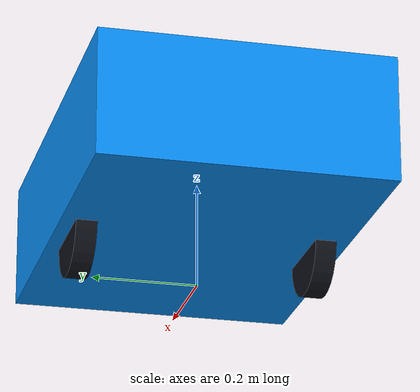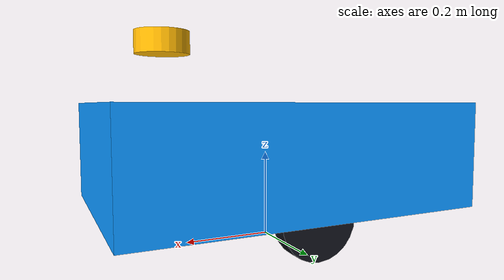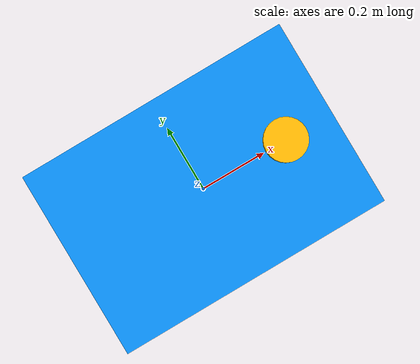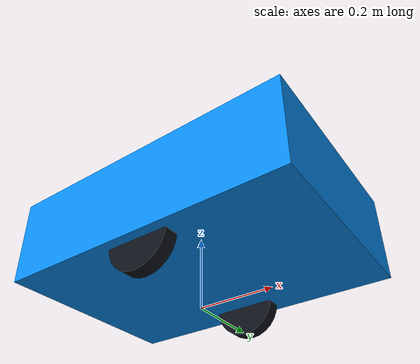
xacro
<?xml version="1.0"?>
<robot xmlns:xacro="http://www.ros.org/wiki/xacro" name="traymover_sim">
  <!-- This model deliberately remains separate from the hardware URDF. -->
  <xacro:property name="body_length" value="0.80"/>
  <xacro:property name="body_width" value="0.55"/>
  <xacro:property name="body_height" value="0.24"/>
  <xacro:property name="wheel_radius" value="0.085"/>
  <xacro:property name="wheel_width" value="0.04"/>
  <xacro:property name="wheel_separation" value="0.455"/>

  <material name="traymover_gray"><color rgba="0.28 0.31 0.34 1"/></material>
  <material name="traymover_black"><color rgba="0.05 0.06 0.09 1"/></material>
  <material name="traymover_blue"><color rgba="0.03 0.55 0.95 1"/></material>
  <material name="traymover_yellow"><color rgba="1.0 0.72 0.0 1"/></material>

  <link name="base_link">
    <inertial><mass value="20.0"/><origin xyz="0 0 0.2"/>
      <inertia ixx="1.0" ixy="0" ixz="0" iyy="1.0" iyz="0" izz="1.0"/>
    </inertial>
    <visual><origin xyz="0 0 0.2"/><geometry><box size="${body_length} ${body_width} ${body_height}"/></geometry><material name="traymover_blue"/></visual>
    <collision><origin xyz="0 0 0.2"/><geometry><box size="${body_length} ${body_width} ${body_height}"/></geometry></collision>
  </link>

  <xacro:macro name="drive_wheel" params="name y axis">
    <link name="${name}_link">
      <inertial><mass value="1.0"/><inertia ixx="0.01" ixy="0" ixz="0" iyy="0.01" iyz="0" izz="0.01"/></inertial>
      <visual><origin rpy="1.5708 0 0"/><geometry><cylinder radius="${wheel_radius}" length="${wheel_width}"/></geometry><material name="traymover_black"/></visual>
      <collision><origin rpy="1.5708 0 0"/><geometry><cylinder radius="${wheel_radius}" length="${wheel_width}"/></geometry></collision>
    </link>
    <joint name="${name}_joint" type="continuous">
      <parent link="base_link"/><child link="${name}_link"/>
      <origin xyz="0 ${y} ${wheel_radius}"/><axis xyz="0 ${axis} 0"/>
    </joint>
  </xacro:macro>

  <xacro:drive_wheel name="left_wheel" y="${wheel_separation / 2.0}" axis="1"/>
  <xacro:drive_wheel name="right_wheel" y="-${wheel_separation / 2.0}" axis="1"/>

  <link name="laser">
    <inertial><mass value="0.1"/><inertia ixx="0.0001" ixy="0" ixz="0" iyy="0.0001" iyz="0" izz="0.0001"/></inertial>
    <visual><geometry><cylinder radius="0.06" length="0.05"/></geometry><material name="traymover_yellow"/></visual>
    <collision><geometry><cylinder radius="0.06" length="0.05"/></geometry></collision>
  </link>
  <joint name="laser_joint" type="fixed">
    <parent link="base_link"/><child link="laser"/><origin xyz="0.25 0 0.45"/>
  </joint>

  <!-- Gazebo Sim system plugins are model-scoped, not link-scoped. -->
  <gazebo>
    <plugin filename="gz-sim-diff-drive-system" name="gz::sim::systems::DiffDrive">
      <left_joint>left_wheel_joint</left_joint>
      <right_joint>right_wheel_joint</right_joint>
      <wheel_separation>0.455</wheel_separation>
      <wheel_radius>0.085</wheel_radius>
      <topic>/cmd_vel</topic>
      <odom_topic>/odom</odom_topic>
      <frame_id>odom</frame_id>
      <child_frame_id>base_link</child_frame_id>
      <odom_publish_frequency>30</odom_publish_frequency>
    </plugin>
  </gazebo>

  <gazebo reference="laser">
    <sensor name="laser_sensor" type="gpu_lidar">
      <pose>0 0 0 0 0 0</pose>
      <update_rate>10</update_rate>
      <topic>/scan</topic>
      <!-- Gazebo Sensors uses gz_frame_id for the LaserScan frame field. -->
      <gz_frame_id>laser</gz_frame_id>
      <always_on>true</always_on>
      <visualize>true</visualize>
      <ray>
        <scan><horizontal>
          <samples>1081</samples><resolution>1</resolution>
          <min_angle>-2.35619449</min_angle><max_angle>2.35619449</max_angle>
        </horizontal></scan>
        <!-- Keep near-field returns so a stopped robot can still put a
             blocking box into Nav2's global obstacle layer. -->
        <range><min>0.05</min><max>8.0</max><resolution>0.01</resolution></range>
      </ray>
    </sensor>
  </gazebo>
</robot>
